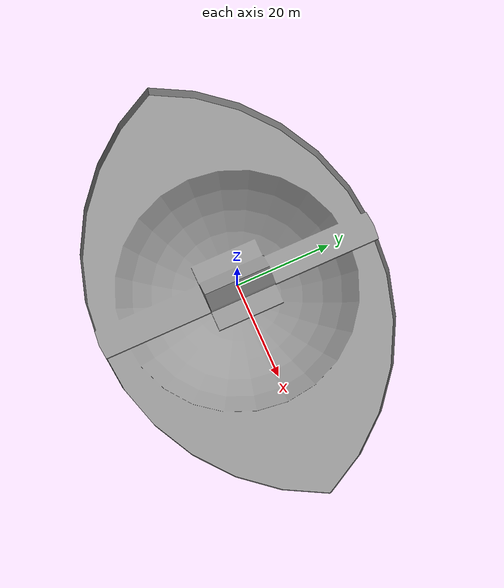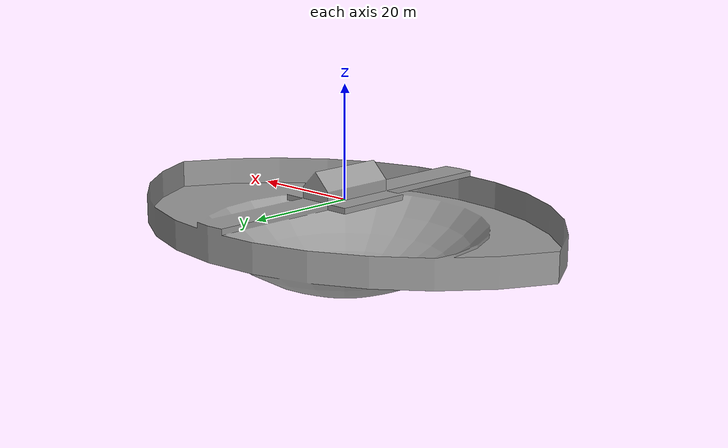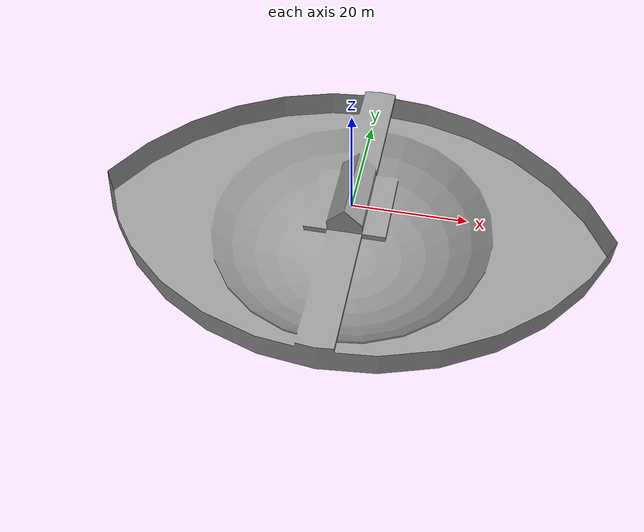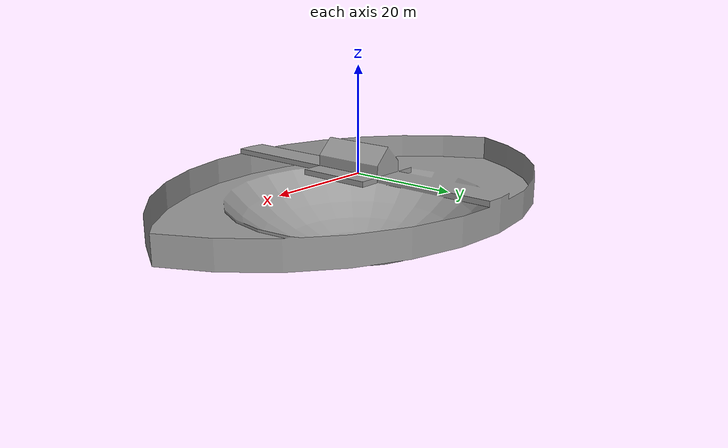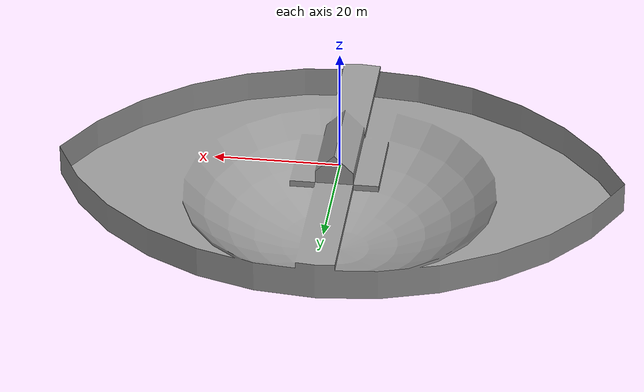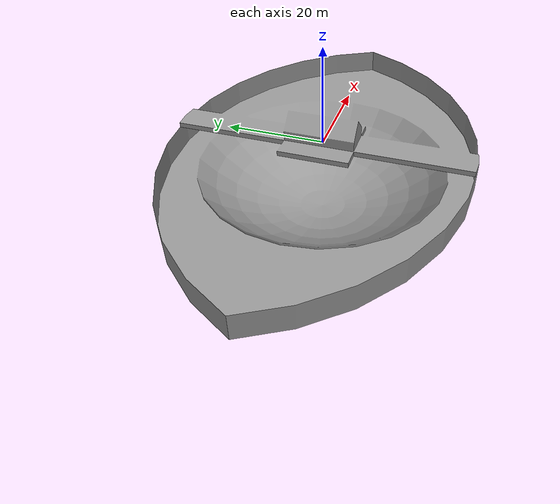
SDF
<?xml version='1.0'?>
<sdf version='1.5'>

  <model name='transdec_pool'>
    <pose>0 0 0 0 0 0</pose>
    <self_collide> 0 </self_collide>
    <static> 1</static>

    <link name='pool'>
      <pose>0 0 0 0 0 0</pose>
      <visual name='pool_visual'>
        <geometry>
            <mesh><uri>file://models/pool/pool.dae</uri></mesh>
        </geometry>
        <material>
            <script>
              <uri>file://media/materials/scripts/gazebo.material</uri>
              <name>Gazebo/Grey</name>
            </script>
          </material>
      </visual>
      <collision name='pool_collision'>
        <geometry>
            <mesh><uri>file://models/pool/pool.dae</uri></mesh>
        </geometry>
      </collision>
    </link>

  </model>
</sdf>
